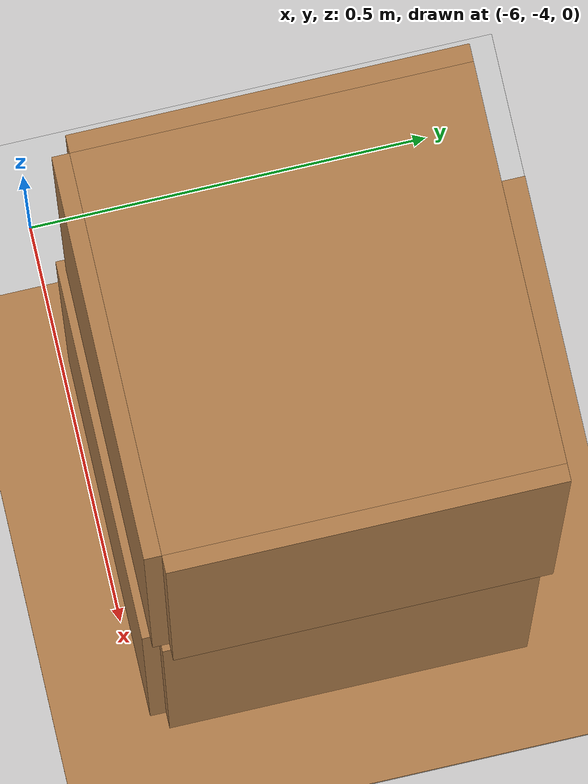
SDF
<sdf version="1.7">
 <world name="default">
  <model name="ground_plane">
   <static>1</static>
   <link name="link">
    <collision name="collision">
     <geometry><plane><normal>0 0 1</normal><size>100 100</size></plane></geometry>
     <surface>
      <contact><collide_bitmask>65535</collide_bitmask></contact>
      <friction><ode><mu>100</mu><mu2>50</mu2></ode></friction>
     </surface>
    </collision>
    <visual name="visual">
     <cast_shadows>0</cast_shadows>
     <geometry><plane><normal>0 0 1</normal><size>100 100</size></plane></geometry>
     <material>
      <script><uri>file://media/materials/scripts/gazebo.material</uri><name>Gazebo/Grey</name></script>
     </material>
    </visual>
   </link>
  </model>
  <model name="ground">
   <link name="Wall_2">
    <pose>6.2457 -16.572 0 0 -0 0</pose>
    <inertial>
     <mass>1</mass>
     <inertia><ixx>1</ixx><ixy>0</ixy><ixz>0</ixz><iyy>1</iyy><iyz>0</iyz><izz>1</izz></inertia>
    </inertial>
    <visual name="Wall_2_Visual">
     <pose>0 0 0.005 0 -0 0</pose>
     <geometry><box><size>14 17 0.01</size></box></geometry>
     <material>
      <script><uri>file://media/materials/scripts/gazebo.material</uri><name>Gazebo/Wood</name></script>
      <ambient>0 0 0 1</ambient>
      <shader type="pixel"><normal_map>__default__</normal_map></shader>
      <diffuse>1 1 1 1</diffuse>
      <specular>0.2 0.2 0.2 1</specular>
      <emissive>0 0 0 1</emissive>
     </material>
     <meta><layer>0</layer></meta>
    </visual>
    <collision name="Wall_2_Collision">
     <pose>0 0 0.005 0 -0 0</pose>
     <geometry><box><size>14 17 0.01</size></box></geometry>
     <surface>
      <friction>
       <ode><mu>1</mu><mu2>1</mu2><fdir1>0 0 0</fdir1><slip1>0</slip1><slip2>0</slip2></ode>
       <torsional>
        <coefficient>1</coefficient>
        <patch_radius>0</patch_radius>
        <surface_radius>0</surface_radius>
        <use_patch_radius>1</use_patch_radius>
        <ode><slip>0</slip></ode>
       </torsional>
      </friction>
      <bounce><restitution_coefficient>0</restitution_coefficient><threshold>1e+06</threshold></bounce>
      <contact>
       <collide_without_contact>0</collide_without_contact>
       <collide_without_contact_bitmask>1</collide_without_contact_bitmask>
       <collide_bitmask>1</collide_bitmask>
       <ode>
        <soft_cfm>0</soft_cfm>
        <soft_erp>0.2</soft_erp>
        <kp>1e+13</kp>
        <kd>1</kd>
        <max_vel>0.01</max_vel>
        <min_depth>0</min_depth>
       </ode>
       <bullet>
        <split_impulse>1</split_impulse>
        <split_impulse_penetration_threshold>-0.01</split_impulse_penetration_threshold>
        <soft_cfm>0</soft_cfm>
        <soft_erp>0.2</soft_erp>
        <kp>1e+13</kp>
        <kd>1</kd>
       </bullet>
      </contact>
     </surface>
    </collision>
   </link>
   <static>1</static>
   <pose>-5.17108 17.0771 0 0 -0 0</pose>
  </model>
  <model name="cabinet_1">
   <static>1</static>
   <link name="cabinet_bottom_plate">
    <inertial>
     <pose>0 0 -1 0 -0 0</pose>
     <inertia><ixx>2.05</ixx><ixy>0</ixy><ixz>0</ixz><iyy>2.05</iyy><iyz>0</iyz><izz>2.05</izz></inertia>
     <mass>25</mass>
    </inertial>
    <collision name="cabinet_bottom_plate_geom">
     <pose>0 0 0.01 0 -0 0</pose>
     <geometry><box><size>0.45 0.45 0.02</size></box></geometry>
    </collision>
    <visual name="cabinet_bottom_plate_geom_visual">
     <pose>0 0 0.01 0 -0 0</pose>
     <geometry><box><size>0.45 0.45 0.02</size></box></geometry>
     <material>
      <script><uri>file://media/materials/scripts/gazebo.material</uri><name>Gazebo/Wood</name></script>
     </material>
    </visual>
    <collision name="cabinet_bottom_plate_geom_cabinet_back_plate">
     <pose>0.235 0 0.51 0 -0 0</pose>
     <geometry><box><size>0.02 0.45 1.02</size></box></geometry>
    </collision>
    <visual name="cabinet_bottom_plate_geom_cabinet_back_plate_visual">
     <pose>0.235 0 0.51 0 -0 0</pose>
     <geometry><box><size>0.02 0.45 1.02</size></box></geometry>
     <material>
      <script><uri>file://media/materials/scripts/gazebo.material</uri><name>Gazebo/Wood</name></script>
     </material>
    </visual>
    <collision name="cabinet_bottom_plate_geom_cabinet_left_plate">
     <pose>0 0.235 0.51 0 -0 0</pose>
     <geometry><box><size>0.45 0.02 1.02</size></box></geometry>
    </collision>
    <visual name="cabinet_bottom_plate_geom_cabinet_left_plate_visual">
     <pose>0 0.235 0.51 0 -0 0</pose>
     <geometry><box><size>0.45 0.02 1.02</size></box></geometry>
     <material>
      <script><uri>file://media/materials/scripts/gazebo.material</uri><name>Gazebo/Wood</name></script>
     </material>
    </visual>
    <collision name="cabinet_bottom_plate_geom_cabinet_middle_plate">
     <pose>0 0 0.51 0 -0 0</pose>
     <geometry><box><size>0.45 0.45 0.02</size></box></geometry>
    </collision>
    <visual name="cabinet_bottom_plate_geom_cabinet_middle_plate_visual">
     <pose>0 0 0.51 0 -0 0</pose>
     <geometry><box><size>0.45 0.45 0.02</size></box></geometry>
     <material>
      <script><uri>file://media/materials/scripts/gazebo.material</uri><name>Gazebo/Wood</name></script>
     </material>
    </visual>
    <collision name="cabinet_bottom_plate_geom_cabinet_right_plate">
     <pose>0 -0.235 0.51 0 -0 0</pose>
     <geometry><box><size>0.45 0.02 1.02</size></box></geometry>
    </collision>
    <visual name="cabinet_bottom_plate_geom_cabinet_right_plate_visual">
     <pose>0 -0.235 0.51 0 -0 0</pose>
     <geometry><box><size>0.45 0.02 1.02</size></box></geometry>
     <material>
      <script><uri>file://media/materials/scripts/gazebo.material</uri><name>Gazebo/Wood</name></script>
     </material>
    </visual>
    <collision name="cabinet_bottom_plate_geom_cabinet_top_plate">
     <pose>0 0 1.01 0 -0 0</pose>
     <geometry><box><size>0.45 0.45 0.02</size></box></geometry>
    </collision>
    <visual name="cabinet_bottom_plate_geom_cabinet_top_plate_visual">
     <pose>0 0 1.01 0 -0 0</pose>
     <geometry><box><size>0.45 0.45 0.02</size></box></geometry>
     <material>
      <script><uri>file://media/materials/scripts/gazebo.material</uri><name>Gazebo/Wood</name></script>
     </material>
    </visual>
   </link>
   <pose>-5.60259 -3.74561 0 0 0 -1.5708</pose>
  </model>
  <model name="cabinet_1_clone_1_clone_0">
   <static>1</static>
   <link name="cabinet_bottom_plate">
    <inertial>
     <pose>0 0 -1 0 -0 0</pose>
     <inertia><ixx>2.05</ixx><ixy>0</ixy><ixz>0</ixz><iyy>2.05</iyy><iyz>0</iyz><izz>2.05</izz></inertia>
     <mass>25</mass>
    </inertial>
    <collision name="cabinet_bottom_plate_geom">
     <pose>0 0 0.01 0 -0 0</pose>
     <geometry><box><size>0.45 0.45 0.02</size></box></geometry>
    </collision>
    <visual name="cabinet_bottom_plate_geom_visual">
     <pose>0 0 0.01 0 -0 0</pose>
     <geometry><box><size>0.45 0.45 0.02</size></box></geometry>
     <material>
      <script><uri>file://media/materials/scripts/gazebo.material</uri><name>Gazebo/Wood</name></script>
     </material>
    </visual>
    <collision name="cabinet_bottom_plate_geom_cabinet_back_plate">
     <pose>0.235 0 0.51 0 -0 0</pose>
     <geometry><box><size>0.02 0.45 1.02</size></box></geometry>
    </collision>
    <visual name="cabinet_bottom_plate_geom_cabinet_back_plate_visual">
     <pose>0.235 0 0.51 0 -0 0</pose>
     <geometry><box><size>0.02 0.45 1.02</size></box></geometry>
     <material>
      <script><uri>file://media/materials/scripts/gazebo.material</uri><name>Gazebo/Wood</name></script>
     </material>
    </visual>
    <collision name="cabinet_bottom_plate_geom_cabinet_left_plate">
     <pose>0 0.235 0.51 0 -0 0</pose>
     <geometry><box><size>0.45 0.02 1.02</size></box></geometry>
    </collision>
    <visual name="cabinet_bottom_plate_geom_cabinet_left_plate_visual">
     <pose>0 0.235 0.51 0 -0 0</pose>
     <geometry><box><size>0.45 0.02 1.02</size></box></geometry>
     <material>
      <script><uri>file://media/materials/scripts/gazebo.material</uri><name>Gazebo/Wood</name></script>
     </material>
    </visual>
    <collision name="cabinet_bottom_plate_geom_cabinet_middle_plate">
     <pose>0 0 0.51 0 -0 0</pose>
     <geometry><box><size>0.45 0.45 0.02</size></box></geometry>
    </collision>
    <visual name="cabinet_bottom_plate_geom_cabinet_middle_plate_visual">
     <pose>0 0 0.51 0 -0 0</pose>
     <geometry><box><size>0.45 0.45 0.02</size></box></geometry>
     <material>
      <script><uri>file://media/materials/scripts/gazebo.material</uri><name>Gazebo/Wood</name></script>
     </material>
    </visual>
    <collision name="cabinet_bottom_plate_geom_cabinet_right_plate">
     <pose>0 -0.235 0.51 0 -0 0</pose>
     <geometry><box><size>0.45 0.02 1.02</size></box></geometry>
    </collision>
    <visual name="cabinet_bottom_plate_geom_cabinet_right_plate_visual">
     <pose>0 -0.235 0.51 0 -0 0</pose>
     <geometry><box><size>0.45 0.02 1.02</size></box></geometry>
     <material>
      <script><uri>file://media/materials/scripts/gazebo.material</uri><name>Gazebo/Wood</name></script>
     </material>
    </visual>
    <collision name="cabinet_bottom_plate_geom_cabinet_top_plate">
     <pose>0 0 1.01 0 -0 0</pose>
     <geometry><box><size>0.45 0.45 0.02</size></box></geometry>
    </collision>
    <visual name="cabinet_bottom_plate_geom_cabinet_top_plate_visual">
     <pose>0 0 1.01 0 -0 0</pose>
     <geometry><box><size>0.45 0.45 0.02</size></box></geometry>
     <material>
      <script><uri>file://media/materials/scripts/gazebo.material</uri><name>Gazebo/Wood</name></script>
     </material>
    </visual>
   </link>
   <pose>-5.58917 -3.73594 1.03113 0 0 -1.5708</pose>
  </model>
 </world>
</sdf>
